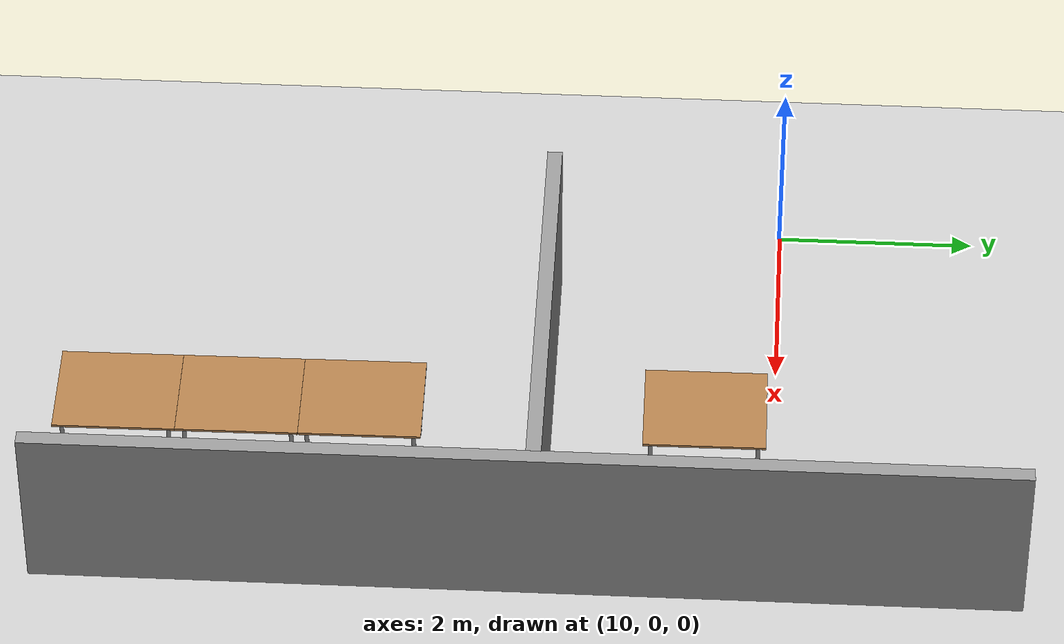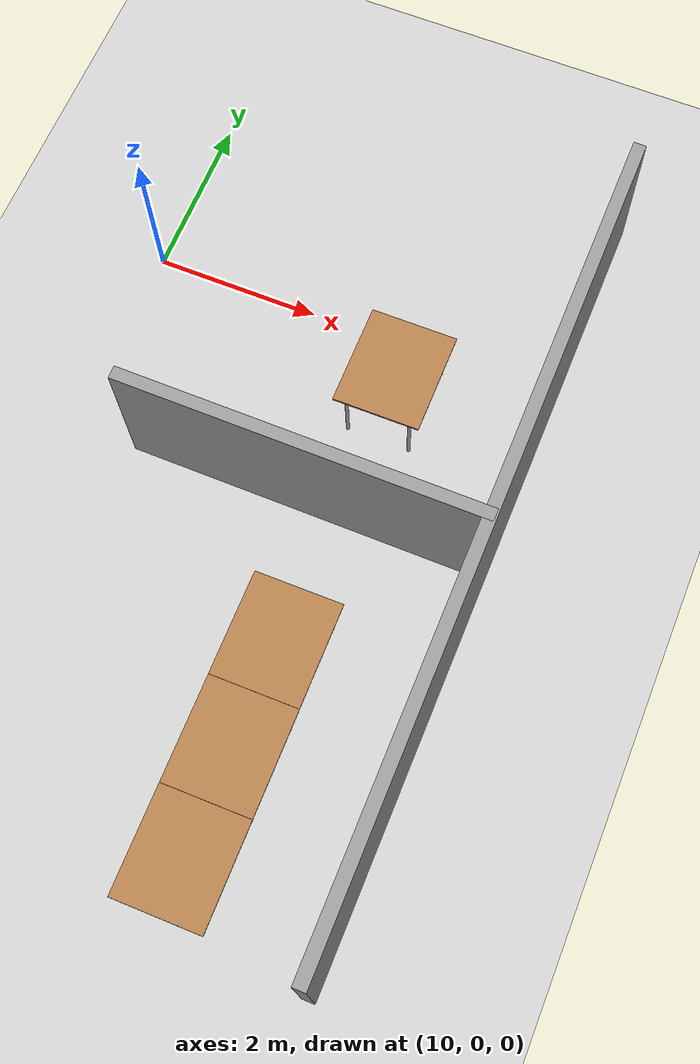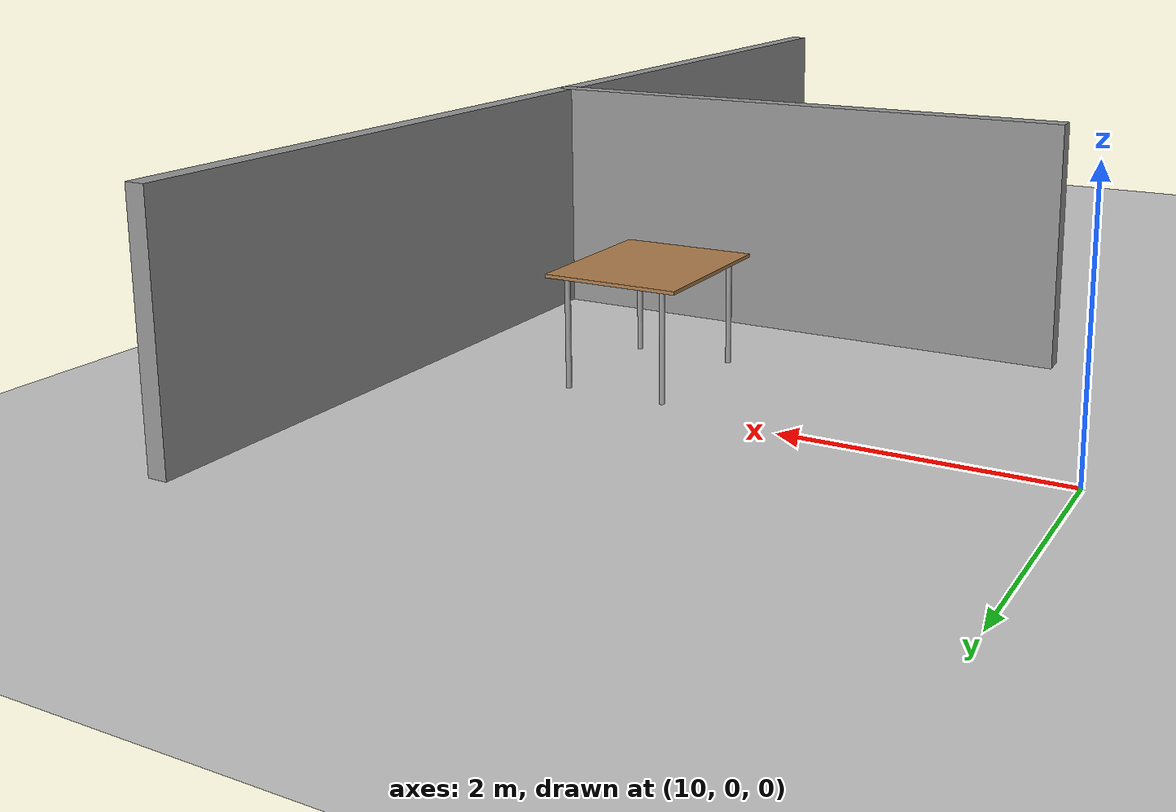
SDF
<sdf version="1.7">
 <world name="default">
  <model name="work_station_clone_clone_clone">
   <link name="link">
    <inertial>
     <inertia><ixx>0</ixx><ixy>0</ixy><ixz>0</ixz><iyy>0</iyy><iyz>0</iyz><izz>0</izz></inertia>
     <mass>0</mass>
    </inertial>
    <visual name="back_right_leg">
     <pose>-0.53 -0.38 0.42 0 -0 0</pose>
     <geometry><cylinder><radius>0.0207459</radius><length>0.822541</length></cylinder></geometry>
     <material>
      <script><uri>file://media/materials/scripts/gazebo.material</uri><name>Gazebo/Grey</name></script>
      <shader type="pixel"><normal_map>__default__</normal_map></shader>
      <ambient>0.3 0.3 0.3 1</ambient>
      <diffuse>0.7 0.7 0.7 1</diffuse>
      <specular>0.01 0.01 0.01 1</specular>
      <emissive>0 0 0 1</emissive>
     </material>
    </visual>
    <visual name="back_left_leg">
     <pose>-0.53 0.38 0.42 0 -0 0</pose>
     <geometry><cylinder><radius>0.0207459</radius><length>0.822541</length></cylinder></geometry>
     <material>
      <script><uri>file://media/materials/scripts/gazebo.material</uri><name>Gazebo/Grey</name></script>
      <shader type="pixel"><normal_map>__default__</normal_map></shader>
      <ambient>0.3 0.3 0.3 1</ambient>
      <diffuse>0.7 0.7 0.7 1</diffuse>
      <specular>0.01 0.01 0.01 1</specular>
      <emissive>0 0 0 1</emissive>
     </material>
    </visual>
    <visual name="front_left_leg">
     <pose>0.53 0.38 0.42 0 -0 0</pose>
     <geometry><cylinder><radius>0.0207459</radius><length>0.822541</length></cylinder></geometry>
     <material>
      <script><uri>file://media/materials/scripts/gazebo.material</uri><name>Gazebo/Grey</name></script>
      <shader type="pixel"><normal_map>__default__</normal_map></shader>
      <ambient>0.3 0.3 0.3 1</ambient>
      <diffuse>0.7 0.7 0.7 1</diffuse>
      <specular>0.01 0.01 0.01 1</specular>
      <emissive>0 0 0 1</emissive>
     </material>
    </visual>
    <visual name="visual1">
     <pose>0 0 0.84 0 -0 0</pose>
     <geometry><box><size>1.21551 1.02942 0.025485</size></box></geometry>
     <material>
      <script><uri>file://media/materials/scripts/gazebo.material</uri><name>Gazebo/Wood</name></script>
      <shader type="pixel"><normal_map>__default__</normal_map></shader>
      <ambient>1 1 1 1</ambient>
      <diffuse>1 1 1 1</diffuse>
      <specular>0.2 0.2 0.2 1</specular>
      <emissive>0 0 0 1</emissive>
     </material>
    </visual>
    <visual name="front_right_leg">
     <pose>0.53 -0.38 0.42 0 -0 0</pose>
     <geometry><cylinder><radius>0.0207459</radius><length>0.822541</length></cylinder></geometry>
     <material>
      <script><uri>file://media/materials/scripts/gazebo.material</uri><name>Gazebo/Grey</name></script>
      <shader type="pixel"><normal_map>__default__</normal_map></shader>
      <ambient>0.3 0.3 0.3 1</ambient>
      <diffuse>0.7 0.7 0.7 1</diffuse>
      <specular>0.01 0.01 0.01 1</specular>
      <emissive>0 0 0 1</emissive>
     </material>
    </visual>
    <collision name="surface">
     <pose>0 0 0.84 0 -0 0</pose>
     <geometry><box><size>1.21551 1.02942 0.025485</size></box></geometry>
     <surface>
      <friction>
       <ode><mu>0.6</mu><mu2>0.6</mu2><fdir1>0 0 0</fdir1><slip1>0</slip1><slip2>0</slip2></ode>
       <torsional>
        <coefficient>1</coefficient>
        <patch_radius>0</patch_radius>
        <surface_radius>0</surface_radius>
        <use_patch_radius>1</use_patch_radius>
        <ode><slip>0</slip></ode>
       </torsional>
      </friction>
      <bounce><restitution_coefficient>0</restitution_coefficient><threshold>1e+06</threshold></bounce>
      <contact>
       <collide_without_contact>0</collide_without_contact>
       <collide_without_contact_bitmask>1</collide_without_contact_bitmask>
       <collide_bitmask>1</collide_bitmask>
       <ode>
        <soft_cfm>0</soft_cfm>
        <soft_erp>0.2</soft_erp>
        <kp>1e+13</kp>
        <kd>1</kd>
        <max_vel>0.01</max_vel>
        <min_depth>0</min_depth>
       </ode>
       <bullet>
        <split_impulse>1</split_impulse>
        <split_impulse_penetration_threshold>-0.01</split_impulse_penetration_threshold>
        <soft_cfm>0</soft_cfm>
        <soft_erp>0.2</soft_erp>
        <kp>1e+13</kp>
        <kd>1</kd>
       </bullet>
      </contact>
     </surface>
    </collision>
    <collision name="front_left_leg">
     <pose>0.53 0.38 0.42 0 -0 0</pose>
     <geometry><cylinder><radius>0.020746</radius><length>0.822541</length></cylinder></geometry>
     <surface>
      <friction>
       <ode><mu>1</mu><mu2>1</mu2><fdir1>0 0 0</fdir1><slip1>0</slip1><slip2>0</slip2></ode>
       <torsional>
        <coefficient>1</coefficient>
        <patch_radius>0</patch_radius>
        <surface_radius>0</surface_radius>
        <use_patch_radius>1</use_patch_radius>
        <ode><slip>0</slip></ode>
       </torsional>
      </friction>
      <bounce><restitution_coefficient>0</restitution_coefficient><threshold>1e+06</threshold></bounce>
      <contact>
       <collide_without_contact>0</collide_without_contact>
       <collide_without_contact_bitmask>1</collide_without_contact_bitmask>
       <collide_bitmask>1</collide_bitmask>
       <ode>
        <soft_cfm>0</soft_cfm>
        <soft_erp>0.2</soft_erp>
        <kp>1e+13</kp>
        <kd>1</kd>
        <max_vel>0.01</max_vel>
        <min_depth>0</min_depth>
       </ode>
       <bullet>
        <split_impulse>1</split_impulse>
        <split_impulse_penetration_threshold>-0.01</split_impulse_penetration_threshold>
        <soft_cfm>0</soft_cfm>
        <soft_erp>0.2</soft_erp>
        <kp>1e+13</kp>
        <kd>1</kd>
       </bullet>
      </contact>
     </surface>
    </collision>
    <collision name="front_right_leg">
     <pose>0.53 -0.38 0.42 0 -0 0</pose>
     <geometry><cylinder><radius>0.020746</radius><length>0.822541</length></cylinder></geometry>
     <surface>
      <friction>
       <ode><mu>1</mu><mu2>1</mu2><fdir1>0 0 0</fdir1><slip1>0</slip1><slip2>0</slip2></ode>
       <torsional>
        <coefficient>1</coefficient>
        <patch_radius>0</patch_radius>
        <surface_radius>0</surface_radius>
        <use_patch_radius>1</use_patch_radius>
        <ode><slip>0</slip></ode>
       </torsional>
      </friction>
      <bounce><restitution_coefficient>0</restitution_coefficient><threshold>1e+06</threshold></bounce>
      <contact>
       <collide_without_contact>0</collide_without_contact>
       <collide_without_contact_bitmask>1</collide_without_contact_bitmask>
       <collide_bitmask>1</collide_bitmask>
       <ode>
        <soft_cfm>0</soft_cfm>
        <soft_erp>0.2</soft_erp>
        <kp>1e+13</kp>
        <kd>1</kd>
        <max_vel>0.01</max_vel>
        <min_depth>0</min_depth>
       </ode>
       <bullet>
        <split_impulse>1</split_impulse>
        <split_impulse_penetration_threshold>-0.01</split_impulse_penetration_threshold>
        <soft_cfm>0</soft_cfm>
        <soft_erp>0.2</soft_erp>
        <kp>1e+13</kp>
        <kd>1</kd>
       </bullet>
      </contact>
     </surface>
    </collision>
    <collision name="back_right_leg">
     <pose>-0.53 -0.38 0.42 0 -0 0</pose>
     <geometry><cylinder><radius>0.020746</radius><length>0.822541</length></cylinder></geometry>
     <surface>
      <friction>
       <ode><mu>1</mu><mu2>1</mu2><fdir1>0 0 0</fdir1><slip1>0</slip1><slip2>0</slip2></ode>
       <torsional>
        <coefficient>1</coefficient>
        <patch_radius>0</patch_radius>
        <surface_radius>0</surface_radius>
        <use_patch_radius>1</use_patch_radius>
        <ode><slip>0</slip></ode>
       </torsional>
      </friction>
      <bounce><restitution_coefficient>0</restitution_coefficient><threshold>1e+06</threshold></bounce>
      <contact>
       <collide_without_contact>0</collide_without_contact>
       <collide_without_contact_bitmask>1</collide_without_contact_bitmask>
       <collide_bitmask>1</collide_bitmask>
       <ode>
        <soft_cfm>0</soft_cfm>
        <soft_erp>0.2</soft_erp>
        <kp>1e+13</kp>
        <kd>1</kd>
        <max_vel>0.01</max_vel>
        <min_depth>0</min_depth>
       </ode>
       <bullet>
        <split_impulse>1</split_impulse>
        <split_impulse_penetration_threshold>-0.01</split_impulse_penetration_threshold>
        <soft_cfm>0</soft_cfm>
        <soft_erp>0.2</soft_erp>
        <kp>1e+13</kp>
        <kd>1</kd>
       </bullet>
      </contact>
     </surface>
    </collision>
    <collision name="back_left_leg">
     <pose>-0.53 0.38 0.42 0 -0 0</pose>
     <geometry><cylinder><radius>0.020746</radius><length>0.822541</length></cylinder></geometry>
     <surface>
      <friction>
       <ode><mu>1</mu><mu2>1</mu2><fdir1>0 0 0</fdir1><slip1>0</slip1><slip2>0</slip2></ode>
       <torsional>
        <coefficient>1</coefficient>
        <patch_radius>0</patch_radius>
        <surface_radius>0</surface_radius>
        <use_patch_radius>1</use_patch_radius>
        <ode><slip>0</slip></ode>
       </torsional>
      </friction>
      <bounce><restitution_coefficient>0</restitution_coefficient><threshold>1e+06</threshold></bounce>
      <contact>
       <collide_without_contact>0</collide_without_contact>
       <collide_without_contact_bitmask>1</collide_without_contact_bitmask>
       <collide_bitmask>1</collide_bitmask>
       <ode>
        <soft_cfm>0</soft_cfm>
        <soft_erp>0.2</soft_erp>
        <kp>1e+13</kp>
        <kd>1</kd>
        <max_vel>0.01</max_vel>
        <min_depth>0</min_depth>
       </ode>
       <bullet>
        <split_impulse>1</split_impulse>
        <split_impulse_penetration_threshold>-0.01</split_impulse_penetration_threshold>
        <soft_cfm>0</soft_cfm>
        <soft_erp>0.2</soft_erp>
        <kp>1e+13</kp>
        <kd>1</kd>
       </bullet>
      </contact>
     </surface>
    </collision>
   </link>
   <static>1</static>
   <pose>13.3647 -6.53049 -0.010152 0 0 -1.56528</pose>
  </model>
  <model name="work_station_clone_clone_clone_clone">
   <link name="link">
    <inertial>
     <inertia><ixx>0</ixx><ixy>0</ixy><ixz>0</ixz><iyy>0</iyy><iyz>0</iyz><izz>0</izz></inertia>
     <mass>0</mass>
    </inertial>
    <visual name="back_right_leg">
     <pose>-0.53 -0.38 0.42 0 -0 0</pose>
     <geometry><cylinder><radius>0.0207459</radius><length>0.822541</length></cylinder></geometry>
     <material>
      <script><uri>file://media/materials/scripts/gazebo.material</uri><name>Gazebo/Grey</name></script>
      <shader type="pixel"><normal_map>__default__</normal_map></shader>
      <ambient>0.3 0.3 0.3 1</ambient>
      <diffuse>0.7 0.7 0.7 1</diffuse>
      <specular>0.01 0.01 0.01 1</specular>
      <emissive>0 0 0 1</emissive>
     </material>
    </visual>
    <visual name="back_left_leg">
     <pose>-0.53 0.38 0.42 0 -0 0</pose>
     <geometry><cylinder><radius>0.0207459</radius><length>0.822541</length></cylinder></geometry>
     <material>
      <script><uri>file://media/materials/scripts/gazebo.material</uri><name>Gazebo/Grey</name></script>
      <shader type="pixel"><normal_map>__default__</normal_map></shader>
      <ambient>0.3 0.3 0.3 1</ambient>
      <diffuse>0.7 0.7 0.7 1</diffuse>
      <specular>0.01 0.01 0.01 1</specular>
      <emissive>0 0 0 1</emissive>
     </material>
    </visual>
    <visual name="front_left_leg">
     <pose>0.53 0.38 0.42 0 -0 0</pose>
     <geometry><cylinder><radius>0.0207459</radius><length>0.822541</length></cylinder></geometry>
     <material>
      <script><uri>file://media/materials/scripts/gazebo.material</uri><name>Gazebo/Grey</name></script>
      <shader type="pixel"><normal_map>__default__</normal_map></shader>
      <ambient>0.3 0.3 0.3 1</ambient>
      <diffuse>0.7 0.7 0.7 1</diffuse>
      <specular>0.01 0.01 0.01 1</specular>
      <emissive>0 0 0 1</emissive>
     </material>
    </visual>
    <visual name="visual1">
     <pose>0 0 0.84 0 -0 0</pose>
     <geometry><box><size>1.21551 1.02942 0.025485</size></box></geometry>
     <material>
      <script><uri>file://media/materials/scripts/gazebo.material</uri><name>Gazebo/Wood</name></script>
      <shader type="pixel"><normal_map>__default__</normal_map></shader>
      <ambient>1 1 1 1</ambient>
      <diffuse>1 1 1 1</diffuse>
      <specular>0.2 0.2 0.2 1</specular>
      <emissive>0 0 0 1</emissive>
     </material>
    </visual>
    <visual name="front_right_leg">
     <pose>0.53 -0.38 0.42 0 -0 0</pose>
     <geometry><cylinder><radius>0.0207459</radius><length>0.822541</length></cylinder></geometry>
     <material>
      <script><uri>file://media/materials/scripts/gazebo.material</uri><name>Gazebo/Grey</name></script>
      <shader type="pixel"><normal_map>__default__</normal_map></shader>
      <ambient>0.3 0.3 0.3 1</ambient>
      <diffuse>0.7 0.7 0.7 1</diffuse>
      <specular>0.01 0.01 0.01 1</specular>
      <emissive>0 0 0 1</emissive>
     </material>
    </visual>
    <collision name="surface">
     <pose>0 0 0.84 0 -0 0</pose>
     <geometry><box><size>1.21551 1.02942 0.025485</size></box></geometry>
     <surface>
      <friction>
       <ode><mu>0.6</mu><mu2>0.6</mu2><fdir1>0 0 0</fdir1><slip1>0</slip1><slip2>0</slip2></ode>
       <torsional>
        <coefficient>1</coefficient>
        <patch_radius>0</patch_radius>
        <surface_radius>0</surface_radius>
        <use_patch_radius>1</use_patch_radius>
        <ode><slip>0</slip></ode>
       </torsional>
      </friction>
      <bounce><restitution_coefficient>0</restitution_coefficient><threshold>1e+06</threshold></bounce>
      <contact>
       <collide_without_contact>0</collide_without_contact>
       <collide_without_contact_bitmask>1</collide_without_contact_bitmask>
       <collide_bitmask>1</collide_bitmask>
       <ode>
        <soft_cfm>0</soft_cfm>
        <soft_erp>0.2</soft_erp>
        <kp>1e+13</kp>
        <kd>1</kd>
        <max_vel>0.01</max_vel>
        <min_depth>0</min_depth>
       </ode>
       <bullet>
        <split_impulse>1</split_impulse>
        <split_impulse_penetration_threshold>-0.01</split_impulse_penetration_threshold>
        <soft_cfm>0</soft_cfm>
        <soft_erp>0.2</soft_erp>
        <kp>1e+13</kp>
        <kd>1</kd>
       </bullet>
      </contact>
     </surface>
    </collision>
    <collision name="front_left_leg">
     <pose>0.53 0.38 0.42 0 -0 0</pose>
     <geometry><cylinder><radius>0.020746</radius><length>0.822541</length></cylinder></geometry>
     <surface>
      <friction>
       <ode><mu>1</mu><mu2>1</mu2><fdir1>0 0 0</fdir1><slip1>0</slip1><slip2>0</slip2></ode>
       <torsional>
        <coefficient>1</coefficient>
        <patch_radius>0</patch_radius>
        <surface_radius>0</surface_radius>
        <use_patch_radius>1</use_patch_radius>
        <ode><slip>0</slip></ode>
       </torsional>
      </friction>
      <bounce><restitution_coefficient>0</restitution_coefficient><threshold>1e+06</threshold></bounce>
      <contact>
       <collide_without_contact>0</collide_without_contact>
       <collide_without_contact_bitmask>1</collide_without_contact_bitmask>
       <collide_bitmask>1</collide_bitmask>
       <ode>
        <soft_cfm>0</soft_cfm>
        <soft_erp>0.2</soft_erp>
        <kp>1e+13</kp>
        <kd>1</kd>
        <max_vel>0.01</max_vel>
        <min_depth>0</min_depth>
       </ode>
       <bullet>
        <split_impulse>1</split_impulse>
        <split_impulse_penetration_threshold>-0.01</split_impulse_penetration_threshold>
        <soft_cfm>0</soft_cfm>
        <soft_erp>0.2</soft_erp>
        <kp>1e+13</kp>
        <kd>1</kd>
       </bullet>
      </contact>
     </surface>
    </collision>
    <collision name="front_right_leg">
     <pose>0.53 -0.38 0.42 0 -0 0</pose>
     <geometry><cylinder><radius>0.020746</radius><length>0.822541</length></cylinder></geometry>
     <surface>
      <friction>
       <ode><mu>1</mu><mu2>1</mu2><fdir1>0 0 0</fdir1><slip1>0</slip1><slip2>0</slip2></ode>
       <torsional>
        <coefficient>1</coefficient>
        <patch_radius>0</patch_radius>
        <surface_radius>0</surface_radius>
        <use_patch_radius>1</use_patch_radius>
        <ode><slip>0</slip></ode>
       </torsional>
      </friction>
      <bounce><restitution_coefficient>0</restitution_coefficient><threshold>1e+06</threshold></bounce>
      <contact>
       <collide_without_contact>0</collide_without_contact>
       <collide_without_contact_bitmask>1</collide_without_contact_bitmask>
       <collide_bitmask>1</collide_bitmask>
       <ode>
        <soft_cfm>0</soft_cfm>
        <soft_erp>0.2</soft_erp>
        <kp>1e+13</kp>
        <kd>1</kd>
        <max_vel>0.01</max_vel>
        <min_depth>0</min_depth>
       </ode>
       <bullet>
        <split_impulse>1</split_impulse>
        <split_impulse_penetration_threshold>-0.01</split_impulse_penetration_threshold>
        <soft_cfm>0</soft_cfm>
        <soft_erp>0.2</soft_erp>
        <kp>1e+13</kp>
        <kd>1</kd>
       </bullet>
      </contact>
     </surface>
    </collision>
    <collision name="back_right_leg">
     <pose>-0.53 -0.38 0.42 0 -0 0</pose>
     <geometry><cylinder><radius>0.020746</radius><length>0.822541</length></cylinder></geometry>
     <surface>
      <friction>
       <ode><mu>1</mu><mu2>1</mu2><fdir1>0 0 0</fdir1><slip1>0</slip1><slip2>0</slip2></ode>
       <torsional>
        <coefficient>1</coefficient>
        <patch_radius>0</patch_radius>
        <surface_radius>0</surface_radius>
        <use_patch_radius>1</use_patch_radius>
        <ode><slip>0</slip></ode>
       </torsional>
      </friction>
      <bounce><restitution_coefficient>0</restitution_coefficient><threshold>1e+06</threshold></bounce>
      <contact>
       <collide_without_contact>0</collide_without_contact>
       <collide_without_contact_bitmask>1</collide_without_contact_bitmask>
       <collide_bitmask>1</collide_bitmask>
       <ode>
        <soft_cfm>0</soft_cfm>
        <soft_erp>0.2</soft_erp>
        <kp>1e+13</kp>
        <kd>1</kd>
        <max_vel>0.01</max_vel>
        <min_depth>0</min_depth>
       </ode>
       <bullet>
        <split_impulse>1</split_impulse>
        <split_impulse_penetration_threshold>-0.01</split_impulse_penetration_threshold>
        <soft_cfm>0</soft_cfm>
        <soft_erp>0.2</soft_erp>
        <kp>1e+13</kp>
        <kd>1</kd>
       </bullet>
      </contact>
     </surface>
    </collision>
    <collision name="back_left_leg">
     <pose>-0.53 0.38 0.42 0 -0 0</pose>
     <geometry><cylinder><radius>0.020746</radius><length>0.822541</length></cylinder></geometry>
     <surface>
      <friction>
       <ode><mu>1</mu><mu2>1</mu2><fdir1>0 0 0</fdir1><slip1>0</slip1><slip2>0</slip2></ode>
       <torsional>
        <coefficient>1</coefficient>
        <patch_radius>0</patch_radius>
        <surface_radius>0</surface_radius>
        <use_patch_radius>1</use_patch_radius>
        <ode><slip>0</slip></ode>
       </torsional>
      </friction>
      <bounce><restitution_coefficient>0</restitution_coefficient><threshold>1e+06</threshold></bounce>
      <contact>
       <collide_without_contact>0</collide_without_contact>
       <collide_without_contact_bitmask>1</collide_without_contact_bitmask>
       <collide_bitmask>1</collide_bitmask>
       <ode>
        <soft_cfm>0</soft_cfm>
        <soft_erp>0.2</soft_erp>
        <kp>1e+13</kp>
        <kd>1</kd>
        <max_vel>0.01</max_vel>
        <min_depth>0</min_depth>
       </ode>
       <bullet>
        <split_impulse>1</split_impulse>
        <split_impulse_penetration_threshold>-0.01</split_impulse_penetration_threshold>
        <soft_cfm>0</soft_cfm>
        <soft_erp>0.2</soft_erp>
        <kp>1e+13</kp>
        <kd>1</kd>
       </bullet>
      </contact>
     </surface>
    </collision>
   </link>
   <static>1</static>
   <pose>13.358 -5.31418 -0.010044 0 0 -1.56528</pose>
  </model>
  <model name="work_station_clone_clone_clone_clone_clone">
   <link name="link">
    <inertial>
     <inertia><ixx>0</ixx><ixy>0</ixy><ixz>0</ixz><iyy>0</iyy><iyz>0</iyz><izz>0</izz></inertia>
     <mass>0</mass>
    </inertial>
    <visual name="back_right_leg">
     <pose>-0.53 -0.38 0.42 0 -0 0</pose>
     <geometry><cylinder><radius>0.0207459</radius><length>0.822541</length></cylinder></geometry>
     <material>
      <script><uri>file://media/materials/scripts/gazebo.material</uri><name>Gazebo/Grey</name></script>
      <shader type="pixel"><normal_map>__default__</normal_map></shader>
      <ambient>0.3 0.3 0.3 1</ambient>
      <diffuse>0.7 0.7 0.7 1</diffuse>
      <specular>0.01 0.01 0.01 1</specular>
      <emissive>0 0 0 1</emissive>
     </material>
    </visual>
    <visual name="back_left_leg">
     <pose>-0.53 0.38 0.42 0 -0 0</pose>
     <geometry><cylinder><radius>0.0207459</radius><length>0.822541</length></cylinder></geometry>
     <material>
      <script><uri>file://media/materials/scripts/gazebo.material</uri><name>Gazebo/Grey</name></script>
      <shader type="pixel"><normal_map>__default__</normal_map></shader>
      <ambient>0.3 0.3 0.3 1</ambient>
      <diffuse>0.7 0.7 0.7 1</diffuse>
      <specular>0.01 0.01 0.01 1</specular>
      <emissive>0 0 0 1</emissive>
     </material>
    </visual>
    <visual name="front_left_leg">
     <pose>0.53 0.38 0.42 0 -0 0</pose>
     <geometry><cylinder><radius>0.0207459</radius><length>0.822541</length></cylinder></geometry>
     <material>
      <script><uri>file://media/materials/scripts/gazebo.material</uri><name>Gazebo/Grey</name></script>
      <shader type="pixel"><normal_map>__default__</normal_map></shader>
      <ambient>0.3 0.3 0.3 1</ambient>
      <diffuse>0.7 0.7 0.7 1</diffuse>
      <specular>0.01 0.01 0.01 1</specular>
      <emissive>0 0 0 1</emissive>
     </material>
    </visual>
    <visual name="visual1">
     <pose>0 0 0.84 0 -0 0</pose>
     <geometry><box><size>1.21551 1.02942 0.025485</size></box></geometry>
     <material>
      <script><uri>file://media/materials/scripts/gazebo.material</uri><name>Gazebo/Wood</name></script>
      <shader type="pixel"><normal_map>__default__</normal_map></shader>
      <ambient>1 1 1 1</ambient>
      <diffuse>1 1 1 1</diffuse>
      <specular>0.2 0.2 0.2 1</specular>
      <emissive>0 0 0 1</emissive>
     </material>
    </visual>
    <visual name="front_right_leg">
     <pose>0.53 -0.38 0.42 0 -0 0</pose>
     <geometry><cylinder><radius>0.0207459</radius><length>0.822541</length></cylinder></geometry>
     <material>
      <script><uri>file://media/materials/scripts/gazebo.material</uri><name>Gazebo/Grey</name></script>
      <shader type="pixel"><normal_map>__default__</normal_map></shader>
      <ambient>0.3 0.3 0.3 1</ambient>
      <diffuse>0.7 0.7 0.7 1</diffuse>
      <specular>0.01 0.01 0.01 1</specular>
      <emissive>0 0 0 1</emissive>
     </material>
    </visual>
    <collision name="surface">
     <pose>0 0 0.84 0 -0 0</pose>
     <geometry><box><size>1.21551 1.02942 0.025485</size></box></geometry>
     <surface>
      <friction>
       <ode><mu>0.6</mu><mu2>0.6</mu2><fdir1>0 0 0</fdir1><slip1>0</slip1><slip2>0</slip2></ode>
       <torsional>
        <coefficient>1</coefficient>
        <patch_radius>0</patch_radius>
        <surface_radius>0</surface_radius>
        <use_patch_radius>1</use_patch_radius>
        <ode><slip>0</slip></ode>
       </torsional>
      </friction>
      <bounce><restitution_coefficient>0</restitution_coefficient><threshold>1e+06</threshold></bounce>
      <contact>
       <collide_without_contact>0</collide_without_contact>
       <collide_without_contact_bitmask>1</collide_without_contact_bitmask>
       <collide_bitmask>1</collide_bitmask>
       <ode>
        <soft_cfm>0</soft_cfm>
        <soft_erp>0.2</soft_erp>
        <kp>1e+13</kp>
        <kd>1</kd>
        <max_vel>0.01</max_vel>
        <min_depth>0</min_depth>
       </ode>
       <bullet>
        <split_impulse>1</split_impulse>
        <split_impulse_penetration_threshold>-0.01</split_impulse_penetration_threshold>
        <soft_cfm>0</soft_cfm>
        <soft_erp>0.2</soft_erp>
        <kp>1e+13</kp>
        <kd>1</kd>
       </bullet>
      </contact>
     </surface>
    </collision>
    <collision name="front_left_leg">
     <pose>0.53 0.38 0.42 0 -0 0</pose>
     <geometry><cylinder><radius>0.020746</radius><length>0.822541</length></cylinder></geometry>
     <surface>
      <friction>
       <ode><mu>1</mu><mu2>1</mu2><fdir1>0 0 0</fdir1><slip1>0</slip1><slip2>0</slip2></ode>
       <torsional>
        <coefficient>1</coefficient>
        <patch_radius>0</patch_radius>
        <surface_radius>0</surface_radius>
        <use_patch_radius>1</use_patch_radius>
        <ode><slip>0</slip></ode>
       </torsional>
      </friction>
      <bounce><restitution_coefficient>0</restitution_coefficient><threshold>1e+06</threshold></bounce>
      <contact>
       <collide_without_contact>0</collide_without_contact>
       <collide_without_contact_bitmask>1</collide_without_contact_bitmask>
       <collide_bitmask>1</collide_bitmask>
       <ode>
        <soft_cfm>0</soft_cfm>
        <soft_erp>0.2</soft_erp>
        <kp>1e+13</kp>
        <kd>1</kd>
        <max_vel>0.01</max_vel>
        <min_depth>0</min_depth>
       </ode>
       <bullet>
        <split_impulse>1</split_impulse>
        <split_impulse_penetration_threshold>-0.01</split_impulse_penetration_threshold>
        <soft_cfm>0</soft_cfm>
        <soft_erp>0.2</soft_erp>
        <kp>1e+13</kp>
        <kd>1</kd>
       </bullet>
      </contact>
     </surface>
    </collision>
    <collision name="front_right_leg">
     <pose>0.53 -0.38 0.42 0 -0 0</pose>
     <geometry><cylinder><radius>0.020746</radius><length>0.822541</length></cylinder></geometry>
     <surface>
      <friction>
       <ode><mu>1</mu><mu2>1</mu2><fdir1>0 0 0</fdir1><slip1>0</slip1><slip2>0</slip2></ode>
       <torsional>
        <coefficient>1</coefficient>
        <patch_radius>0</patch_radius>
        <surface_radius>0</surface_radius>
        <use_patch_radius>1</use_patch_radius>
        <ode><slip>0</slip></ode>
       </torsional>
      </friction>
      <bounce><restitution_coefficient>0</restitution_coefficient><threshold>1e+06</threshold></bounce>
      <contact>
       <collide_without_contact>0</collide_without_contact>
       <collide_without_contact_bitmask>1</collide_without_contact_bitmask>
       <collide_bitmask>1</collide_bitmask>
       <ode>
        <soft_cfm>0</soft_cfm>
        <soft_erp>0.2</soft_erp>
        <kp>1e+13</kp>
        <kd>1</kd>
        <max_vel>0.01</max_vel>
        <min_depth>0</min_depth>
       </ode>
       <bullet>
        <split_impulse>1</split_impulse>
        <split_impulse_penetration_threshold>-0.01</split_impulse_penetration_threshold>
        <soft_cfm>0</soft_cfm>
        <soft_erp>0.2</soft_erp>
        <kp>1e+13</kp>
        <kd>1</kd>
       </bullet>
      </contact>
     </surface>
    </collision>
    <collision name="back_right_leg">
     <pose>-0.53 -0.38 0.42 0 -0 0</pose>
     <geometry><cylinder><radius>0.020746</radius><length>0.822541</length></cylinder></geometry>
     <surface>
      <friction>
       <ode><mu>1</mu><mu2>1</mu2><fdir1>0 0 0</fdir1><slip1>0</slip1><slip2>0</slip2></ode>
       <torsional>
        <coefficient>1</coefficient>
        <patch_radius>0</patch_radius>
        <surface_radius>0</surface_radius>
        <use_patch_radius>1</use_patch_radius>
        <ode><slip>0</slip></ode>
       </torsional>
      </friction>
      <bounce><restitution_coefficient>0</restitution_coefficient><threshold>1e+06</threshold></bounce>
      <contact>
       <collide_without_contact>0</collide_without_contact>
       <collide_without_contact_bitmask>1</collide_without_contact_bitmask>
       <collide_bitmask>1</collide_bitmask>
       <ode>
        <soft_cfm>0</soft_cfm>
        <soft_erp>0.2</soft_erp>
        <kp>1e+13</kp>
        <kd>1</kd>
        <max_vel>0.01</max_vel>
        <min_depth>0</min_depth>
       </ode>
       <bullet>
        <split_impulse>1</split_impulse>
        <split_impulse_penetration_threshold>-0.01</split_impulse_penetration_threshold>
        <soft_cfm>0</soft_cfm>
        <soft_erp>0.2</soft_erp>
        <kp>1e+13</kp>
        <kd>1</kd>
       </bullet>
      </contact>
     </surface>
    </collision>
    <collision name="back_left_leg">
     <pose>-0.53 0.38 0.42 0 -0 0</pose>
     <geometry><cylinder><radius>0.020746</radius><length>0.822541</length></cylinder></geometry>
     <surface>
      <friction>
       <ode><mu>1</mu><mu2>1</mu2><fdir1>0 0 0</fdir1><slip1>0</slip1><slip2>0</slip2></ode>
       <torsional>
        <coefficient>1</coefficient>
        <patch_radius>0</patch_radius>
        <surface_radius>0</surface_radius>
        <use_patch_radius>1</use_patch_radius>
        <ode><slip>0</slip></ode>
       </torsional>
      </friction>
      <bounce><restitution_coefficient>0</restitution_coefficient><threshold>1e+06</threshold></bounce>
      <contact>
       <collide_without_contact>0</collide_without_contact>
       <collide_without_contact_bitmask>1</collide_without_contact_bitmask>
       <collide_bitmask>1</collide_bitmask>
       <ode>
        <soft_cfm>0</soft_cfm>
        <soft_erp>0.2</soft_erp>
        <kp>1e+13</kp>
        <kd>1</kd>
        <max_vel>0.01</max_vel>
        <min_depth>0</min_depth>
       </ode>
       <bullet>
        <split_impulse>1</split_impulse>
        <split_impulse_penetration_threshold>-0.01</split_impulse_penetration_threshold>
        <soft_cfm>0</soft_cfm>
        <soft_erp>0.2</soft_erp>
        <kp>1e+13</kp>
        <kd>1</kd>
       </bullet>
      </contact>
     </surface>
    </collision>
   </link>
   <static>1</static>
   <pose>13.35 -4.098 -0.010044 0 0 -1.56528</pose>
  </model>
  <model name="work_station_clone_clone_clone_clone_clone_clone_clone_clone">
   <link name="link">
    <inertial>
     <inertia><ixx>0</ixx><ixy>0</ixy><ixz>0</ixz><iyy>0</iyy><iyz>0</iyz><izz>0</izz></inertia>
     <mass>0</mass>
    </inertial>
    <visual name="back_right_leg">
     <pose>-0.53 -0.38 0.42 0 -0 0</pose>
     <geometry><cylinder><radius>0.0207459</radius><length>0.822541</length></cylinder></geometry>
     <material>
      <script><uri>file://media/materials/scripts/gazebo.material</uri><name>Gazebo/Grey</name></script>
      <shader type="pixel"><normal_map>__default__</normal_map></shader>
      <ambient>0.3 0.3 0.3 1</ambient>
      <diffuse>0.7 0.7 0.7 1</diffuse>
      <specular>0.01 0.01 0.01 1</specular>
      <emissive>0 0 0 1</emissive>
     </material>
    </visual>
    <visual name="back_left_leg">
     <pose>-0.53 0.38 0.42 0 -0 0</pose>
     <geometry><cylinder><radius>0.0207459</radius><length>0.822541</length></cylinder></geometry>
     <material>
      <script><uri>file://media/materials/scripts/gazebo.material</uri><name>Gazebo/Grey</name></script>
      <shader type="pixel"><normal_map>__default__</normal_map></shader>
      <ambient>0.3 0.3 0.3 1</ambient>
      <diffuse>0.7 0.7 0.7 1</diffuse>
      <specular>0.01 0.01 0.01 1</specular>
      <emissive>0 0 0 1</emissive>
     </material>
    </visual>
    <visual name="front_left_leg">
     <pose>0.53 0.38 0.42 0 -0 0</pose>
     <geometry><cylinder><radius>0.0207459</radius><length>0.822541</length></cylinder></geometry>
     <material>
      <script><uri>file://media/materials/scripts/gazebo.material</uri><name>Gazebo/Grey</name></script>
      <shader type="pixel"><normal_map>__default__</normal_map></shader>
      <ambient>0.3 0.3 0.3 1</ambient>
      <diffuse>0.7 0.7 0.7 1</diffuse>
      <specular>0.01 0.01 0.01 1</specular>
      <emissive>0 0 0 1</emissive>
     </material>
    </visual>
    <visual name="visual1">
     <pose>0 0 0.84 0 -0 0</pose>
     <geometry><box><size>1.21551 1.02942 0.025485</size></box></geometry>
     <material>
      <script><uri>file://media/materials/scripts/gazebo.material</uri><name>Gazebo/Wood</name></script>
      <shader type="pixel"><normal_map>__default__</normal_map></shader>
      <ambient>1 1 1 1</ambient>
      <diffuse>1 1 1 1</diffuse>
      <specular>0.2 0.2 0.2 1</specular>
      <emissive>0 0 0 1</emissive>
     </material>
    </visual>
    <visual name="front_right_leg">
     <pose>0.53 -0.38 0.42 0 -0 0</pose>
     <geometry><cylinder><radius>0.0207459</radius><length>0.822541</length></cylinder></geometry>
     <material>
      <script><uri>file://media/materials/scripts/gazebo.material</uri><name>Gazebo/Grey</name></script>
      <shader type="pixel"><normal_map>__default__</normal_map></shader>
      <ambient>0.3 0.3 0.3 1</ambient>
      <diffuse>0.7 0.7 0.7 1</diffuse>
      <specular>0.01 0.01 0.01 1</specular>
      <emissive>0 0 0 1</emissive>
     </material>
    </visual>
    <collision name="surface">
     <pose>0 0 0.84 0 -0 0</pose>
     <geometry><box><size>1.21551 1.02942 0.025485</size></box></geometry>
     <surface>
      <friction>
       <ode><mu>0.6</mu><mu2>0.6</mu2><fdir1>0 0 0</fdir1><slip1>0</slip1><slip2>0</slip2></ode>
       <torsional>
        <coefficient>1</coefficient>
        <patch_radius>0</patch_radius>
        <surface_radius>0</surface_radius>
        <use_patch_radius>1</use_patch_radius>
        <ode><slip>0</slip></ode>
       </torsional>
      </friction>
      <bounce><restitution_coefficient>0</restitution_coefficient><threshold>1e+06</threshold></bounce>
      <contact>
       <collide_without_contact>0</collide_without_contact>
       <collide_without_contact_bitmask>1</collide_without_contact_bitmask>
       <collide_bitmask>1</collide_bitmask>
       <ode>
        <soft_cfm>0</soft_cfm>
        <soft_erp>0.2</soft_erp>
        <kp>1e+13</kp>
        <kd>1</kd>
        <max_vel>0.01</max_vel>
        <min_depth>0</min_depth>
       </ode>
       <bullet>
        <split_impulse>1</split_impulse>
        <split_impulse_penetration_threshold>-0.01</split_impulse_penetration_threshold>
        <soft_cfm>0</soft_cfm>
        <soft_erp>0.2</soft_erp>
        <kp>1e+13</kp>
        <kd>1</kd>
       </bullet>
      </contact>
     </surface>
    </collision>
    <collision name="front_left_leg">
     <pose>0.53 0.38 0.42 0 -0 0</pose>
     <geometry><cylinder><radius>0.020746</radius><length>0.822541</length></cylinder></geometry>
     <surface>
      <friction>
       <ode><mu>1</mu><mu2>1</mu2><fdir1>0 0 0</fdir1><slip1>0</slip1><slip2>0</slip2></ode>
       <torsional>
        <coefficient>1</coefficient>
        <patch_radius>0</patch_radius>
        <surface_radius>0</surface_radius>
        <use_patch_radius>1</use_patch_radius>
        <ode><slip>0</slip></ode>
       </torsional>
      </friction>
      <bounce><restitution_coefficient>0</restitution_coefficient><threshold>1e+06</threshold></bounce>
      <contact>
       <collide_without_contact>0</collide_without_contact>
       <collide_without_contact_bitmask>1</collide_without_contact_bitmask>
       <collide_bitmask>1</collide_bitmask>
       <ode>
        <soft_cfm>0</soft_cfm>
        <soft_erp>0.2</soft_erp>
        <kp>1e+13</kp>
        <kd>1</kd>
        <max_vel>0.01</max_vel>
        <min_depth>0</min_depth>
       </ode>
       <bullet>
        <split_impulse>1</split_impulse>
        <split_impulse_penetration_threshold>-0.01</split_impulse_penetration_threshold>
        <soft_cfm>0</soft_cfm>
        <soft_erp>0.2</soft_erp>
        <kp>1e+13</kp>
        <kd>1</kd>
       </bullet>
      </contact>
     </surface>
    </collision>
    <collision name="front_right_leg">
     <pose>0.53 -0.38 0.42 0 -0 0</pose>
     <geometry><cylinder><radius>0.020746</radius><length>0.822541</length></cylinder></geometry>
     <surface>
      <friction>
       <ode><mu>1</mu><mu2>1</mu2><fdir1>0 0 0</fdir1><slip1>0</slip1><slip2>0</slip2></ode>
       <torsional>
        <coefficient>1</coefficient>
        <patch_radius>0</patch_radius>
        <surface_radius>0</surface_radius>
        <use_patch_radius>1</use_patch_radius>
        <ode><slip>0</slip></ode>
       </torsional>
      </friction>
      <bounce><restitution_coefficient>0</restitution_coefficient><threshold>1e+06</threshold></bounce>
      <contact>
       <collide_without_contact>0</collide_without_contact>
       <collide_without_contact_bitmask>1</collide_without_contact_bitmask>
       <collide_bitmask>1</collide_bitmask>
       <ode>
        <soft_cfm>0</soft_cfm>
        <soft_erp>0.2</soft_erp>
        <kp>1e+13</kp>
        <kd>1</kd>
        <max_vel>0.01</max_vel>
        <min_depth>0</min_depth>
       </ode>
       <bullet>
        <split_impulse>1</split_impulse>
        <split_impulse_penetration_threshold>-0.01</split_impulse_penetration_threshold>
        <soft_cfm>0</soft_cfm>
        <soft_erp>0.2</soft_erp>
        <kp>1e+13</kp>
        <kd>1</kd>
       </bullet>
      </contact>
     </surface>
    </collision>
    <collision name="back_right_leg">
     <pose>-0.53 -0.38 0.42 0 -0 0</pose>
     <geometry><cylinder><radius>0.020746</radius><length>0.822541</length></cylinder></geometry>
     <surface>
      <friction>
       <ode><mu>1</mu><mu2>1</mu2><fdir1>0 0 0</fdir1><slip1>0</slip1><slip2>0</slip2></ode>
       <torsional>
        <coefficient>1</coefficient>
        <patch_radius>0</patch_radius>
        <surface_radius>0</surface_radius>
        <use_patch_radius>1</use_patch_radius>
        <ode><slip>0</slip></ode>
       </torsional>
      </friction>
      <bounce><restitution_coefficient>0</restitution_coefficient><threshold>1e+06</threshold></bounce>
      <contact>
       <collide_without_contact>0</collide_without_contact>
       <collide_without_contact_bitmask>1</collide_without_contact_bitmask>
       <collide_bitmask>1</collide_bitmask>
       <ode>
        <soft_cfm>0</soft_cfm>
        <soft_erp>0.2</soft_erp>
        <kp>1e+13</kp>
        <kd>1</kd>
        <max_vel>0.01</max_vel>
        <min_depth>0</min_depth>
       </ode>
       <bullet>
        <split_impulse>1</split_impulse>
        <split_impulse_penetration_threshold>-0.01</split_impulse_penetration_threshold>
        <soft_cfm>0</soft_cfm>
        <soft_erp>0.2</soft_erp>
        <kp>1e+13</kp>
        <kd>1</kd>
       </bullet>
      </contact>
     </surface>
    </collision>
    <collision name="back_left_leg">
     <pose>-0.53 0.38 0.42 0 -0 0</pose>
     <geometry><cylinder><radius>0.020746</radius><length>0.822541</length></cylinder></geometry>
     <surface>
      <friction>
       <ode><mu>1</mu><mu2>1</mu2><fdir1>0 0 0</fdir1><slip1>0</slip1><slip2>0</slip2></ode>
       <torsional>
        <coefficient>1</coefficient>
        <patch_radius>0</patch_radius>
        <surface_radius>0</surface_radius>
        <use_patch_radius>1</use_patch_radius>
        <ode><slip>0</slip></ode>
       </torsional>
      </friction>
      <bounce><restitution_coefficient>0</restitution_coefficient><threshold>1e+06</threshold></bounce>
      <contact>
       <collide_without_contact>0</collide_without_contact>
       <collide_without_contact_bitmask>1</collide_without_contact_bitmask>
       <collide_bitmask>1</collide_bitmask>
       <ode>
        <soft_cfm>0</soft_cfm>
        <soft_erp>0.2</soft_erp>
        <kp>1e+13</kp>
        <kd>1</kd>
        <max_vel>0.01</max_vel>
        <min_depth>0</min_depth>
       </ode>
       <bullet>
        <split_impulse>1</split_impulse>
        <split_impulse_penetration_threshold>-0.01</split_impulse_penetration_threshold>
        <soft_cfm>0</soft_cfm>
        <soft_erp>0.2</soft_erp>
        <kp>1e+13</kp>
        <kd>1</kd>
       </bullet>
      </contact>
     </surface>
    </collision>
   </link>
   <static>1</static>
   <pose>13.3304 -0.697988 -0.010044 0 0 -1.56528</pose>
  </model>
  <model name="ground_plane">
   <static>1</static>
   <link name="link">
    <collision name="collision">
     <geometry><plane><normal>0 0 1</normal><size>100 100</size></plane></geometry>
     <surface>
      <contact><collide_bitmask>65535</collide_bitmask></contact>
      <friction><ode><mu>100</mu><mu2>50</mu2></ode></friction>
     </surface>
    </collision>
    <visual name="visual">
     <cast_shadows>0</cast_shadows>
     <geometry><plane><normal>0 0 1</normal><size>100 100</size></plane></geometry>
     <material>
      <script><uri>file://media/materials/scripts/gazebo.material</uri><name>Gazebo/Grey</name></script>
     </material>
    </visual>
   </link>
  </model>
  <model name="HQ_0">
   <link name="Wall_15">
    <pose>14.9613 -2.41798 0 0 0 -1.5708</pose>
    <visual name="Wall_15_Visual">
     <pose>0 0 1.25 0 -0 0</pose>
     <geometry><box><size>9.75 0.15 2</size></box></geometry>
     <material>
      <script><uri>file://media/materials/scripts/gazebo.material</uri><name>Gazebo/Grey</name></script>
      <ambient>1 1 1 1</ambient>
      <shader type="pixel"/>
     </material>
     <meta><layer>0</layer></meta>
    </visual>
    <collision name="Wall_15_Collision">
     <pose>0 0 1.25 0 -0 0</pose>
     <geometry><box><size>9.75 0.15 2</size></box></geometry>
     <surface>
      <friction>
       <ode><mu>1</mu><mu2>1</mu2><fdir1>0 0 0</fdir1><slip1>0</slip1><slip2>0</slip2></ode>
       <torsional>
        <coefficient>1</coefficient>
        <patch_radius>0</patch_radius>
        <surface_radius>0</surface_radius>
        <use_patch_radius>1</use_patch_radius>
        <ode><slip>0</slip></ode>
       </torsional>
      </friction>
      <bounce><restitution_coefficient>0</restitution_coefficient><threshold>1e+06</threshold></bounce>
      <contact>
       <collide_without_contact>0</collide_without_contact>
       <collide_without_contact_bitmask>1</collide_without_contact_bitmask>
       <collide_bitmask>1</collide_bitmask>
       <ode>
        <soft_cfm>0</soft_cfm>
        <soft_erp>0.2</soft_erp>
        <kp>1e+13</kp>
        <kd>1</kd>
        <max_vel>0.01</max_vel>
        <min_depth>0</min_depth>
       </ode>
       <bullet>
        <split_impulse>1</split_impulse>
        <split_impulse_penetration_threshold>-0.01</split_impulse_penetration_threshold>
        <soft_cfm>0</soft_cfm>
        <soft_erp>0.2</soft_erp>
        <kp>1e+13</kp>
        <kd>1</kd>
       </bullet>
      </contact>
     </surface>
    </collision>
   </link>
   <link name="Wall_163">
    <pose>12.8544 -2.32786 0 0 0 -0.00122</pose>
    <visual name="Wall_163_Visual">
     <pose>0 0 1.25 0 -0 0</pose>
     <geometry><box><size>4.32225 0.15 2</size></box></geometry>
     <material>
      <script><uri>file://media/materials/scripts/gazebo.material</uri><name>Gazebo/Grey</name></script>
      <ambient>1 1 1 1</ambient>
      <shader type="pixel"/>
     </material>
     <meta><layer>0</layer></meta>
    </visual>
    <collision name="Wall_163_Collision">
     <pose>0 0 1.25 0 -0 0</pose>
     <geometry><box><size>4.32225 0.15 2</size></box></geometry>
     <surface>
      <friction>
       <ode><mu>1</mu><mu2>1</mu2><fdir1>0 0 0</fdir1><slip1>0</slip1><slip2>0</slip2></ode>
       <torsional>
        <coefficient>1</coefficient>
        <patch_radius>0</patch_radius>
        <surface_radius>0</surface_radius>
        <use_patch_radius>1</use_patch_radius>
        <ode><slip>0</slip></ode>
       </torsional>
      </friction>
      <bounce><restitution_coefficient>0</restitution_coefficient><threshold>1e+06</threshold></bounce>
      <contact>
       <collide_without_contact>0</collide_without_contact>
       <collide_without_contact_bitmask>1</collide_without_contact_bitmask>
       <collide_bitmask>1</collide_bitmask>
       <ode>
        <soft_cfm>0</soft_cfm>
        <soft_erp>0.2</soft_erp>
        <kp>1e+13</kp>
        <kd>1</kd>
        <max_vel>0.01</max_vel>
        <min_depth>0</min_depth>
       </ode>
       <bullet>
        <split_impulse>1</split_impulse>
        <split_impulse_penetration_threshold>-0.01</split_impulse_penetration_threshold>
        <soft_cfm>0</soft_cfm>
        <soft_erp>0.2</soft_erp>
        <kp>1e+13</kp>
        <kd>1</kd>
       </bullet>
      </contact>
     </surface>
    </collision>
   </link>
   <static>1</static>
   <pose>0.058415 0.010329 -0.412364 0 -0 0</pose>
  </model>
 </world>
</sdf>
